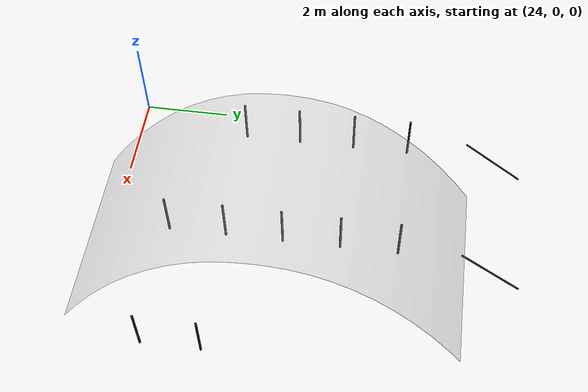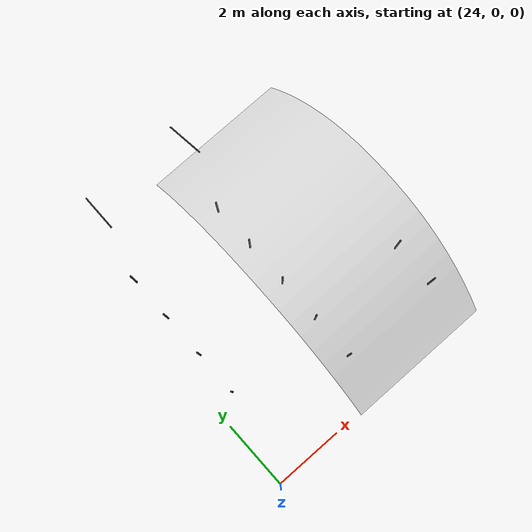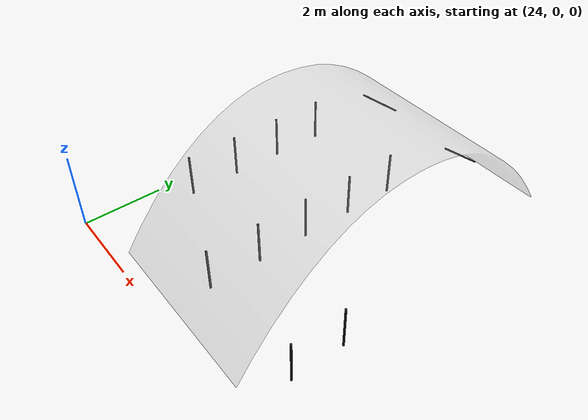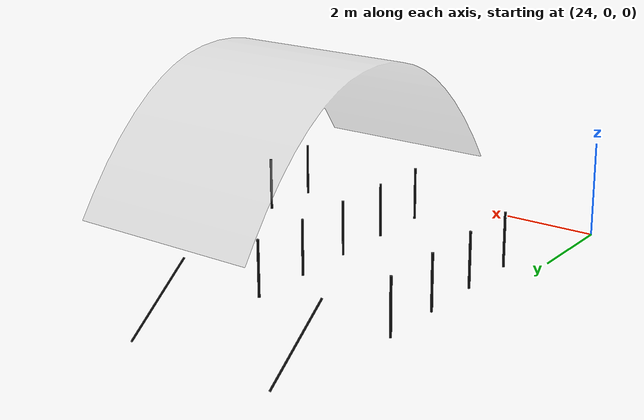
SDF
<sdf version="1.4">
 <world name="default">
  <model name="pole_76">
   <static>1</static>
   <pose>24.640 2.640 0.575 0.0 0.0 0.0</pose>
   <link name="link">
    <collision name="collision">
     <geometry><cylinder><length>1.15</length><radius>0.025</radius></cylinder></geometry>
    </collision>
    <visual name="visual">
     <geometry><cylinder><length>1.15</length><radius>0.025</radius></cylinder></geometry>
     <material>
      <script><uri>file://media/materials/scripts/gazebo.material</uri><name>Gazebo/Chrome</name></script>
      <shader type="vertex"><normal_map>__default__</normal_map></shader>
      <emissive>0.1 0.1 0.1 1</emissive>
      <specular>0.01 0.01 0.01 1</specular>
      <ambient>0.5 0.5 0.5 1</ambient>
      <diffuse>0.05 0.05 0.05 1</diffuse>
     </material>
    </visual>
   </link>
  </model>
  <model name="pole_77">
   <static>1</static>
   <pose>24.640 3.960 0.575 0.0 0.0 0.0</pose>
   <link name="link">
    <collision name="collision">
     <geometry><cylinder><length>1.15</length><radius>0.025</radius></cylinder></geometry>
    </collision>
    <visual name="visual">
     <geometry><cylinder><length>1.15</length><radius>0.025</radius></cylinder></geometry>
     <material>
      <script><uri>file://media/materials/scripts/gazebo.material</uri><name>Gazebo/Chrome</name></script>
      <shader type="vertex"><normal_map>__default__</normal_map></shader>
      <emissive>0.1 0.1 0.1 1</emissive>
      <specular>0.01 0.01 0.01 1</specular>
      <ambient>0.5 0.5 0.5 1</ambient>
      <diffuse>0.05 0.05 0.05 1</diffuse>
     </material>
    </visual>
   </link>
  </model>
  <model name="pole_78">
   <static>1</static>
   <pose>24.640 5.280 0.575 0.0 0.0 0.0</pose>
   <link name="link">
    <collision name="collision">
     <geometry><cylinder><length>1.15</length><radius>0.025</radius></cylinder></geometry>
    </collision>
    <visual name="visual">
     <geometry><cylinder><length>1.15</length><radius>0.025</radius></cylinder></geometry>
     <material>
      <script><uri>file://media/materials/scripts/gazebo.material</uri><name>Gazebo/Chrome</name></script>
      <shader type="vertex"><normal_map>__default__</normal_map></shader>
      <emissive>0.1 0.1 0.1 1</emissive>
      <specular>0.01 0.01 0.01 1</specular>
      <ambient>0.5 0.5 0.5 1</ambient>
      <diffuse>0.05 0.05 0.05 1</diffuse>
     </material>
    </visual>
   </link>
  </model>
  <model name="pole_79">
   <static>1</static>
   <pose>24.640 6.600 0.575 0.0 0.0 0.0</pose>
   <link name="link">
    <collision name="collision">
     <geometry><cylinder><length>1.15</length><radius>0.025</radius></cylinder></geometry>
    </collision>
    <visual name="visual">
     <geometry><cylinder><length>1.15</length><radius>0.025</radius></cylinder></geometry>
     <material>
      <script><uri>file://media/materials/scripts/gazebo.material</uri><name>Gazebo/Chrome</name></script>
      <shader type="vertex"><normal_map>__default__</normal_map></shader>
      <emissive>0.1 0.1 0.1 1</emissive>
      <specular>0.01 0.01 0.01 1</specular>
      <ambient>0.5 0.5 0.5 1</ambient>
      <diffuse>0.05 0.05 0.05 1</diffuse>
     </material>
    </visual>
   </link>
  </model>
  <model name="pole_80">
   <static>1</static>
   <pose>27.580 1.320 0.575 0.0 0.0 0.0</pose>
   <link name="link">
    <collision name="collision">
     <geometry><cylinder><length>1.15</length><radius>0.025</radius></cylinder></geometry>
    </collision>
    <visual name="visual">
     <geometry><cylinder><length>1.15</length><radius>0.025</radius></cylinder></geometry>
     <material>
      <script><uri>file://media/materials/scripts/gazebo.material</uri><name>Gazebo/Chrome</name></script>
      <shader type="vertex"><normal_map>__default__</normal_map></shader>
      <emissive>0.1 0.1 0.1 1</emissive>
      <specular>0.01 0.01 0.01 1</specular>
      <ambient>0.5 0.5 0.5 1</ambient>
      <diffuse>0.05 0.05 0.05 1</diffuse>
     </material>
    </visual>
   </link>
  </model>
  <model name="pole_81">
   <static>1</static>
   <pose>27.580 2.640 0.575 0.0 0.0 0.0</pose>
   <link name="link">
    <collision name="collision">
     <geometry><cylinder><length>1.15</length><radius>0.025</radius></cylinder></geometry>
    </collision>
    <visual name="visual">
     <geometry><cylinder><length>1.15</length><radius>0.025</radius></cylinder></geometry>
     <material>
      <script><uri>file://media/materials/scripts/gazebo.material</uri><name>Gazebo/Chrome</name></script>
      <shader type="vertex"><normal_map>__default__</normal_map></shader>
      <emissive>0.1 0.1 0.1 1</emissive>
      <specular>0.01 0.01 0.01 1</specular>
      <ambient>0.5 0.5 0.5 1</ambient>
      <diffuse>0.05 0.05 0.05 1</diffuse>
     </material>
    </visual>
   </link>
  </model>
  <model name="pole_82">
   <static>1</static>
   <pose>27.580 3.960 0.575 0.0 0.0 0.0</pose>
   <link name="link">
    <collision name="collision">
     <geometry><cylinder><length>1.15</length><radius>0.025</radius></cylinder></geometry>
    </collision>
    <visual name="visual">
     <geometry><cylinder><length>1.15</length><radius>0.025</radius></cylinder></geometry>
     <material>
      <script><uri>file://media/materials/scripts/gazebo.material</uri><name>Gazebo/Chrome</name></script>
      <shader type="vertex"><normal_map>__default__</normal_map></shader>
      <emissive>0.1 0.1 0.1 1</emissive>
      <specular>0.01 0.01 0.01 1</specular>
      <ambient>0.5 0.5 0.5 1</ambient>
      <diffuse>0.05 0.05 0.05 1</diffuse>
     </material>
    </visual>
   </link>
  </model>
  <model name="pole_83">
   <static>1</static>
   <pose>27.580 5.280 0.575 0.0 0.0 0.0</pose>
   <link name="link">
    <collision name="collision">
     <geometry><cylinder><length>1.15</length><radius>0.025</radius></cylinder></geometry>
    </collision>
    <visual name="visual">
     <geometry><cylinder><length>1.15</length><radius>0.025</radius></cylinder></geometry>
     <material>
      <script><uri>file://media/materials/scripts/gazebo.material</uri><name>Gazebo/Chrome</name></script>
      <shader type="vertex"><normal_map>__default__</normal_map></shader>
      <emissive>0.1 0.1 0.1 1</emissive>
      <specular>0.01 0.01 0.01 1</specular>
      <ambient>0.5 0.5 0.5 1</ambient>
      <diffuse>0.05 0.05 0.05 1</diffuse>
     </material>
    </visual>
   </link>
  </model>
  <model name="pole_84">
   <static>1</static>
   <pose>27.580 6.600 0.575 0.0 0.0 0.0</pose>
   <link name="link">
    <collision name="collision">
     <geometry><cylinder><length>1.15</length><radius>0.025</radius></cylinder></geometry>
    </collision>
    <visual name="visual">
     <geometry><cylinder><length>1.15</length><radius>0.025</radius></cylinder></geometry>
     <material>
      <script><uri>file://media/materials/scripts/gazebo.material</uri><name>Gazebo/Chrome</name></script>
      <shader type="vertex"><normal_map>__default__</normal_map></shader>
      <emissive>0.1 0.1 0.1 1</emissive>
      <specular>0.01 0.01 0.01 1</specular>
      <ambient>0.5 0.5 0.5 1</ambient>
      <diffuse>0.05 0.05 0.05 1</diffuse>
     </material>
    </visual>
   </link>
  </model>
  <model name="pole_85">
   <static>1</static>
   <pose>30.520 1.320 0.575 0.0 0.0 0.0</pose>
   <link name="link">
    <collision name="collision">
     <geometry><cylinder><length>1.15</length><radius>0.025</radius></cylinder></geometry>
    </collision>
    <visual name="visual">
     <geometry><cylinder><length>1.15</length><radius>0.025</radius></cylinder></geometry>
     <material>
      <script><uri>file://media/materials/scripts/gazebo.material</uri><name>Gazebo/Chrome</name></script>
      <shader type="vertex"><normal_map>__default__</normal_map></shader>
      <emissive>0.1 0.1 0.1 1</emissive>
      <specular>0.01 0.01 0.01 1</specular>
      <ambient>0.5 0.5 0.5 1</ambient>
      <diffuse>0.05 0.05 0.05 1</diffuse>
     </material>
    </visual>
   </link>
  </model>
  <model name="pole_86">
   <static>1</static>
   <pose>30.520 2.640 0.575 0.0 0.0 0.0</pose>
   <link name="link">
    <collision name="collision">
     <geometry><cylinder><length>1.15</length><radius>0.025</radius></cylinder></geometry>
    </collision>
    <visual name="visual">
     <geometry><cylinder><length>1.15</length><radius>0.025</radius></cylinder></geometry>
     <material>
      <script><uri>file://media/materials/scripts/gazebo.material</uri><name>Gazebo/Chrome</name></script>
      <shader type="vertex"><normal_map>__default__</normal_map></shader>
      <emissive>0.1 0.1 0.1 1</emissive>
      <specular>0.01 0.01 0.01 1</specular>
      <ambient>0.5 0.5 0.5 1</ambient>
      <diffuse>0.05 0.05 0.05 1</diffuse>
     </material>
    </visual>
   </link>
  </model>
  <model name="canopy4m_1">
   <static>1</static>
   <pose>26.720 0.000 -0.00 1.5707 0.0 1.5707</pose>
   <link name="link">
    <collision name="collision">
     <geometry><mesh><uri>model://canopy4m/canopy4m.stl</uri></mesh></geometry>
    </collision>
    <visual name="visual">
     <geometry><mesh><uri>model://canopy4m/canopy4m.stl</uri></mesh></geometry>
     <transparency>0.65</transparency>
    </visual>
   </link>
  </model>
  <model name="strut_15">
   <static>1</static>
   <pose>25.100 8.620 0.536 0.896 0.0 0.0</pose>
   <link name="link">
    <collision name="collision">
     <geometry><cylinder><length>1.76</length><radius>0.02</radius></cylinder></geometry>
    </collision>
    <visual name="visual">
     <geometry><cylinder><length>1.76</length><radius>0.02</radius></cylinder></geometry>
     <material>
      <script><uri>file://media/materials/scripts/gazebo.material</uri><name>Gazebo/Chrome</name></script>
      <shader type="vertex"><normal_map>__default__</normal_map></shader>
      <emissive>0.1 0.1 0.1 1</emissive>
      <specular>0.01 0.01 0.01 1</specular>
      <ambient>0.5 0.5 0.5 1</ambient>
      <diffuse>0.05 0.05 0.05 1</diffuse>
     </material>
    </visual>
   </link>
  </model>
  <model name="strut_16">
   <static>1</static>
   <pose>28.160 8.620 0.536 0.896 0.0 0.0</pose>
   <link name="link">
    <collision name="collision">
     <geometry><cylinder><length>1.76</length><radius>0.02</radius></cylinder></geometry>
    </collision>
    <visual name="visual">
     <geometry><cylinder><length>1.76</length><radius>0.02</radius></cylinder></geometry>
     <material>
      <script><uri>file://media/materials/scripts/gazebo.material</uri><name>Gazebo/Chrome</name></script>
      <shader type="vertex"><normal_map>__default__</normal_map></shader>
      <emissive>0.1 0.1 0.1 1</emissive>
      <specular>0.01 0.01 0.01 1</specular>
      <ambient>0.5 0.5 0.5 1</ambient>
      <diffuse>0.05 0.05 0.05 1</diffuse>
     </material>
    </visual>
   </link>
  </model>
  <include><uri>model://sun</uri></include>
 </world>
</sdf>
